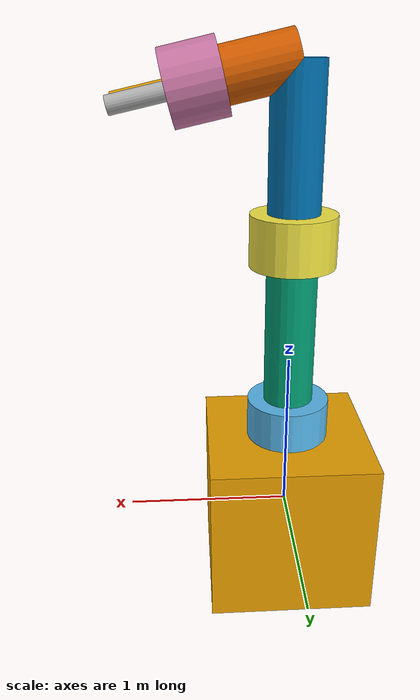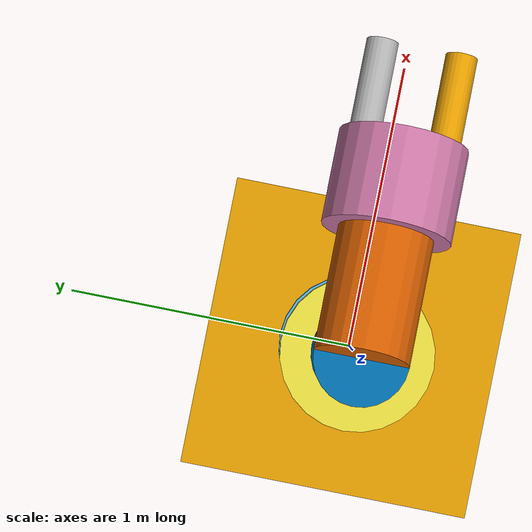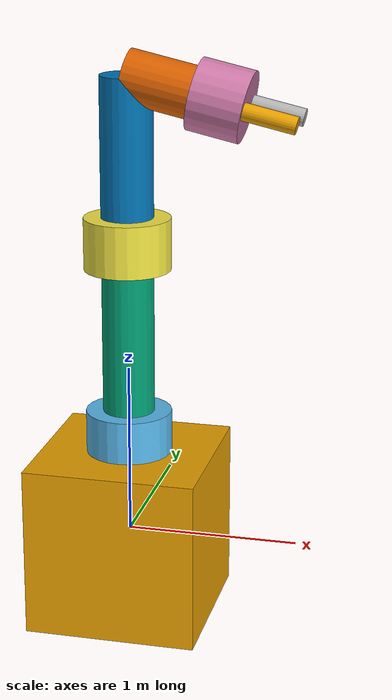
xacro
<?xml version="1.0" ?>
<robot name="arm" xmlns:xacro="http://www.ros.org/wiki/xacro">
    <!-- BGN - Include -->
    <xacro:include filename="$(find arm_description)/urdf/links_joints.xacro"/>
    <!-- END - Include -->
    <!-- BGN - Robot description -->
    <m_link_box name="base_link"
              origin_rpy="0 0 0" origin_xyz="0 0 0"
              mass="1024"
              ixx="170.667" ixy="0" ixz="0"
              iyy="170.667" iyz="0"
              izz="170.667"
              size="1 1 1" />
     <m_joint name="base_link__link_01" type="revolute"
           axis_xyz="0 0 1"
           origin_rpy="0 0 0" origin_xyz="0 0 0.5"
           parent="base_link" child="link_01"
           limit_e="1000" limit_l="-2.61" limit_u="1.98" limit_v="0.5" />

     <m_link_cylinder name="link_01"
              origin_rpy="0 0 0" origin_xyz="0 0 0.1"
              mass="157.906"
              ixx="13.235" ixy="0" ixz="0"
              iyy="13.235" iyz="0"
              izz="9.655"
              radius="0.25" length="0.3" />
    <m_joint name="link_01__link_02" type="revolute"
           axis_xyz="0 1 0"
           origin_rpy="0 0 0" origin_xyz="0 0 0.3"
           parent="link_01" child="link_02"
           limit_e="1000" limit_l="-1.61" limit_u="1.9" limit_v="0.5" />

     <m_link_cylinder name="link_02"
              origin_rpy="0 0 0" origin_xyz="0 0 0.3"
              mass="57.906"
              ixx="12.679" ixy="0" ixz="0"
              iyy="12.679" iyz="0"
              izz="0.651"
              radius="0.15" length="1" />

     <m_joint name="link_02__link_03" type="revolute"
           axis_xyz="0 0 1"
           origin_rpy="0 0 0" origin_xyz="0 0 0.8"
           parent="link_02" child="link_03"
           limit_e="1000" limit_l="-2.61" limit_u="0.71" limit_v="0.5" />
    <m_link_cylinder name="link_03"
              origin_rpy="0 0 0" origin_xyz="0 0 0.15"
              mass="57.906"
              ixx="12.679" ixy="0" ixz="0"
              iyy="12.679" iyz="0"
              izz="0.651"
              radius="0.25" length="0.3" />
     <m_joint name="link_03__link_04" type="revolute"
           axis_xyz="0 1 0"
           origin_rpy="0 0 0" origin_xyz="0 0 0.3"
           parent="link_03" child="link_04"
           limit_e="1000" limit_l="-1.61" limit_u="1.9" limit_v="0.5" />
     <m_link_cylinder name="link_04"
              origin_rpy="0 0 0" origin_xyz="0 0 0.4"
              mass="57.906"
              ixx="12.679" ixy="0" ixz="0"
              iyy="12.679" iyz="0"
              izz="0.651"
              radius="0.15" length="0.8" />
     <m_joint name="link_04__link_05" type="revolute"
           axis_xyz="0 1 0"
           origin_rpy="0 0 0" origin_xyz="0 0 0.8"
           parent="link_04" child="link_05"
           limit_e="1000" limit_l="1.61" limit_u="1.97" limit_v="0.5" />
     <m_link_cylinder name="link_05"
              origin_rpy="0 0 0" origin_xyz="0 0 0.2"
              mass="18.056"
              ixx=".479" ixy="0" ixz="0"
              iyy="0.479" iyz="0"
              izz="0.651"
              radius="0.15" length="0.4" />
     <m_joint name="link_05__link_06" type="revolute"
           axis_xyz="0 0 1"
           origin_rpy="0 0 0" origin_xyz="0 0 0.4"
           parent="link_05" child="link_06"
           limit_e="1000" limit_l="-2.6" limit_u="2.6" limit_v="0.5" />
    <m_link_cylinder name="link_06"
              origin_rpy="0 0 0" origin_xyz="0 0 0.15"
              mass="18.056"
              ixx="0.479" ixy="0" ixz="0"
              iyy="0.479" iyz="0"
              izz="0.651"
              radius="0.204" length="0.3" />
    <joint name="link_06__finger_1" type="prismatic">
        <axis xyz="0 1 0"/>
        <limit effort="1000.0" lower="0" upper="-0.075" velocity="0.5"/>
        <origin rpy="0 0 0" xyz="0 0 0.3"/>
        <parent link="link_06"/>
        <child link="finger_1"/>
        <safety_controller k_position="20" k_velocity="20" soft_lower_limit="${-0.15 }" soft_upper_limit="${ 0.0 }"/>
        <dynamics damping="50" friction="1"/>
    </joint>
    <transmission name="trans_link_06__finger_1">
      <type>transmission_interface/SimpleTransmission</type>
      <joint name="link_06__finger_1">
        <hardwareInterface>hardware_interface/PositionJointInterface</hardwareInterface>
      </joint>
      <actuator name="motor_link_06__finger_1">
        <hardwareInterface>hardware_interface/PositionJointInterface</hardwareInterface>
        <mechanicalReduction>1</mechanicalReduction>
      </actuator>
    </transmission>
    <m_link_cylinder name="finger_1"
              origin_rpy="0 0 0" origin_xyz="0 0.125 0.15"
              mass="5.906"
              ixx="12.679" ixy="0" ixz="0"
              iyy="12.679" iyz="0"
              izz="0.651"
              radius="0.05" length="0.3" />
    <joint name="link_06__finger_2" type="prismatic">
        <axis xyz="0 1 0"/>
        <limit effort="1000.0" lower="0" upper="0.075" velocity="0.5"/>
        <origin rpy="0 0 0" xyz="0 0 0.3"/>
        <parent link="link_06"/>
        <child link="finger_2"/>
        <safety_controller k_position="20" k_velocity="20" soft_lower_limit="${-0.15 }" soft_upper_limit="${ 0.0 }"/>
        <dynamics damping="50" friction="1"/>
    </joint>
    <transmission name="trans_link_06__finger_2">
      <type>transmission_interface/SimpleTransmission</type>
      <joint name="link_06__finger_2">
        <hardwareInterface>hardware_interface/PositionJointInterface</hardwareInterface>
      </joint>
      <actuator name="motor_link_06__finger_2">
        <hardwareInterface>hardware_interface/PositionJointInterface</hardwareInterface>
        <mechanicalReduction>1</mechanicalReduction>
      </actuator>
    </transmission>
      <m_link_cylinder name="finger_2"
              origin_rpy="0 0 0" origin_xyz="0 -0.125 0.15"
              mass="5.906"
              ixx="12.679" ixy="0" ixz="0"
              iyy="12.679" iyz="0"
              izz="0.651"
              radius="0.05" length="0.3" />

    <!-- END - Robot description -->

<gazebo>
        <plugin name="gazebo_ros_control" filename="libgazebo_ros_control.so">
            <robotNamespace>/arm</robotNamespace>
        </plugin>
    </gazebo>
</robot>

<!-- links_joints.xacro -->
<robot xmlns:xacro="http://www.ros.org/wiki/xacro">

  <xacro:macro name="m_joint" params="name type axis_xyz origin_rpy origin_xyz parent child limit_e limit_l limit_u limit_v">
    <joint name="${name}" type="${type}">
      <axis xyz="${axis_xyz}" />
      <limit effort="${limit_e}" lower="${limit_l}" upper="${limit_u}" velocity="${limit_v}" />
      <origin rpy="${origin_rpy}" xyz="${origin_xyz}" />
      <parent link="${parent}" />
      <child link="${child}" />
    </joint>
    <transmission name="trans_${name}">
      <type>transmission_interface/SimpleTransmission</type>
      <joint name="${name}">
        <hardwareInterface>hardware_interface/PositionJointInterface</hardwareInterface>
      </joint>
      <actuator name="motor_${name}">
        <hardwareInterface>hardware_interface/PositionJointInterface</hardwareInterface>
        <mechanicalReduction>1</mechanicalReduction>
      </actuator>
    </transmission>
  </xacro:macro>

  <xacro:macro name="m_link_cylinder" params="name origin_xyz origin_rpy radius length mass ixx ixy ixz iyy iyz izz">
    <link name="${name}">
      <inertial>
        <mass value="${mass}" />
        <origin rpy="${origin_rpy}" xyz="${origin_xyz}" />
        <inertia ixx="${ixx}" ixy="${ixy}" ixz="${ixz}" iyy="${iyy}" iyz="${iyz}" izz="${izz}" />
      </inertial>
      <collision>
        <origin rpy="${origin_rpy}" xyz="${origin_xyz}" />
        <geometry>
          <cylinder radius="${radius}" length="${length}" />
        </geometry>
      </collision>
      <visual>
        <origin rpy="${origin_rpy}" xyz="${origin_xyz}" />
        <geometry>
          <cylinder radius="${radius}" length="${length}" />
        </geometry>
      </visual>
    </link>
  </xacro:macro>

  <xacro:macro name="m_link_box" params="name origin_xyz origin_rpy size mass ixx ixy ixz iyy iyz izz">
    <link name="${name}">
      <inertial>
        <mass value="${mass}" />
        <origin rpy="${origin_rpy}" xyz="${origin_xyz}" />
        <inertia ixx="${ixx}" ixy="${ixy}" ixz="${ixz}" iyy="${iyy}" iyz="${iyz}" izz="${izz}" />
      </inertial>
      <collision>
        <origin rpy="${origin_rpy}" xyz="${origin_xyz}" />
        <geometry>
          <box size="${size}" />
        </geometry>
      </collision>
      <visual>
        <origin rpy="${origin_rpy}" xyz="${origin_xyz}" />
        <geometry>
          <box size="${size}" />
        </geometry>
      </visual>
    </link>
  </xacro:macro>

  <xacro:macro name="m_link_mesh" params="name origin_xyz origin_rpy meshfile meshscale mass ixx ixy ixz iyy iyz izz">
    <link name="${name}">
      <inertial>
        <mass value="${mass}" />
        <origin rpy="${origin_rpy}" xyz="${origin_xyz}" />
        <inertia ixx="${ixx}" ixy="${ixy}" ixz="${ixz}" iyy="${iyy}" iyz="${iyz}" izz="${izz}" />
      </inertial>
      <collision>
        <origin rpy="${origin_rpy}" xyz="${origin_xyz}" />
        <geometry>
          <mesh filename="${meshfile}" scale="${meshscale}"/>
        </geometry>
      </collision>
      <visual>
        <origin rpy="${origin_rpy}" xyz="${origin_xyz}" />
        <geometry>
          <mesh filename="${meshfile}" scale="${meshscale}"/>
        </geometry>
        <material name="light_black"/>
      </visual>
    </link>
  </xacro:macro>

</robot>
